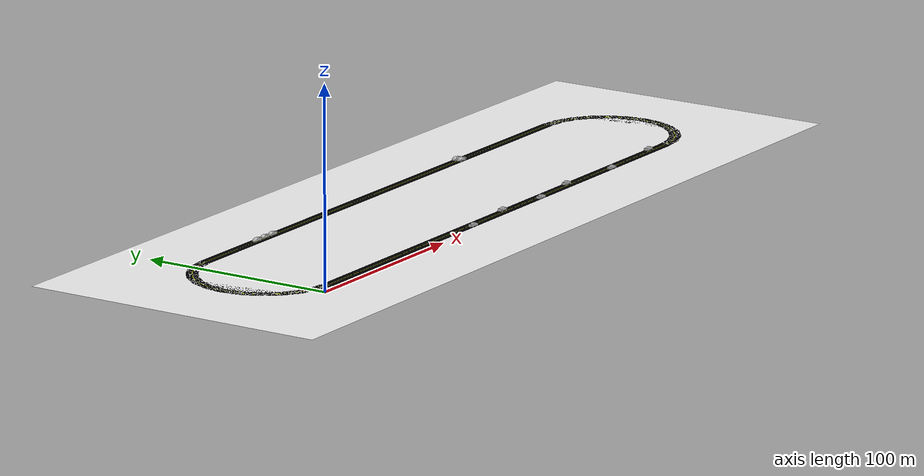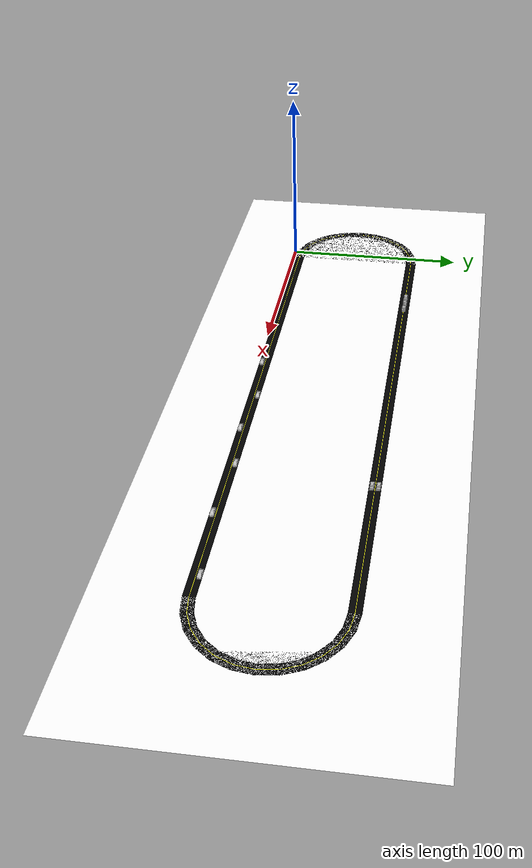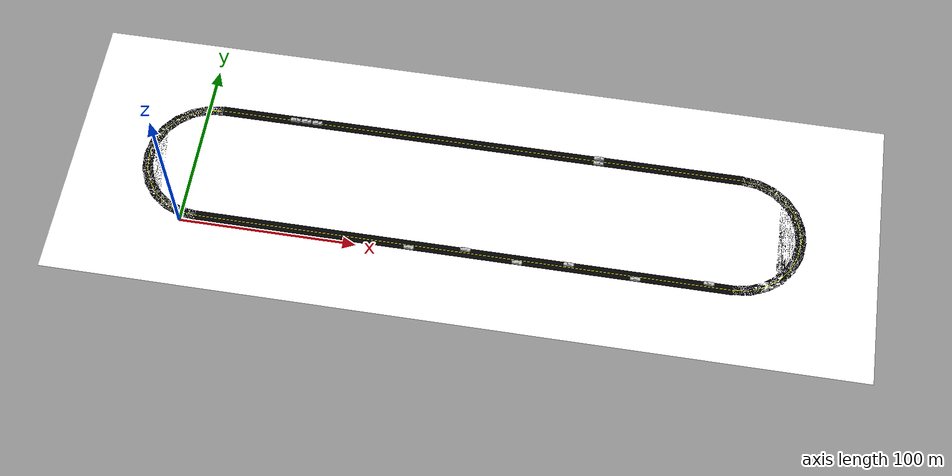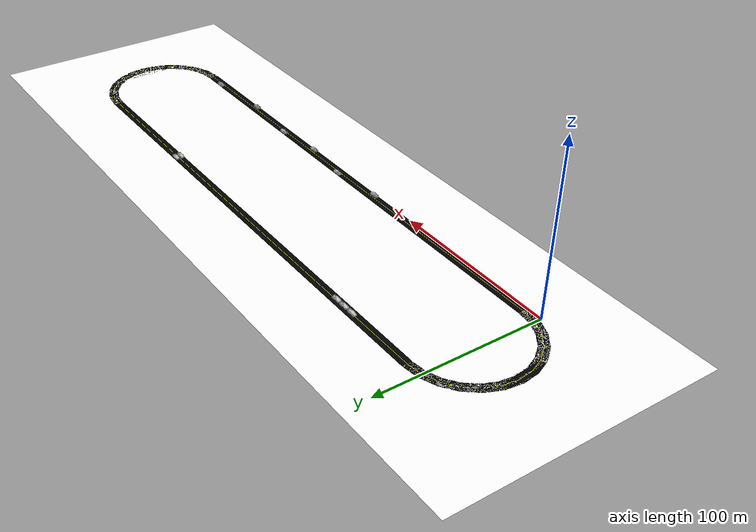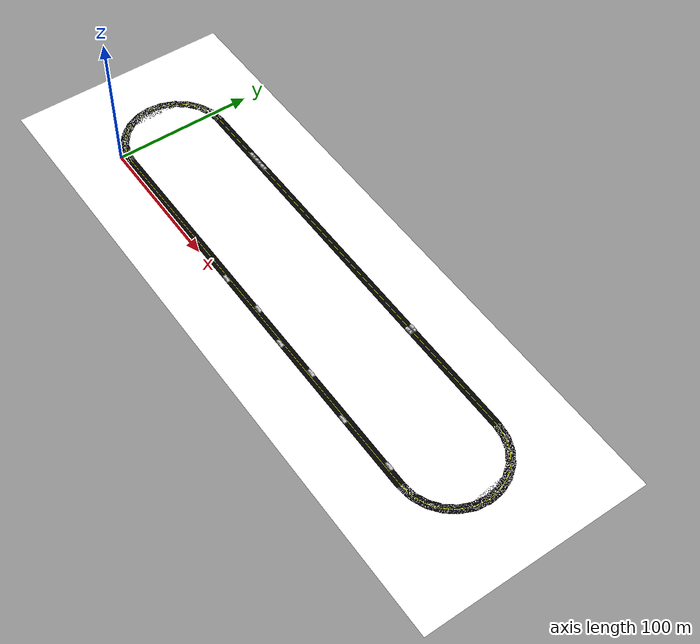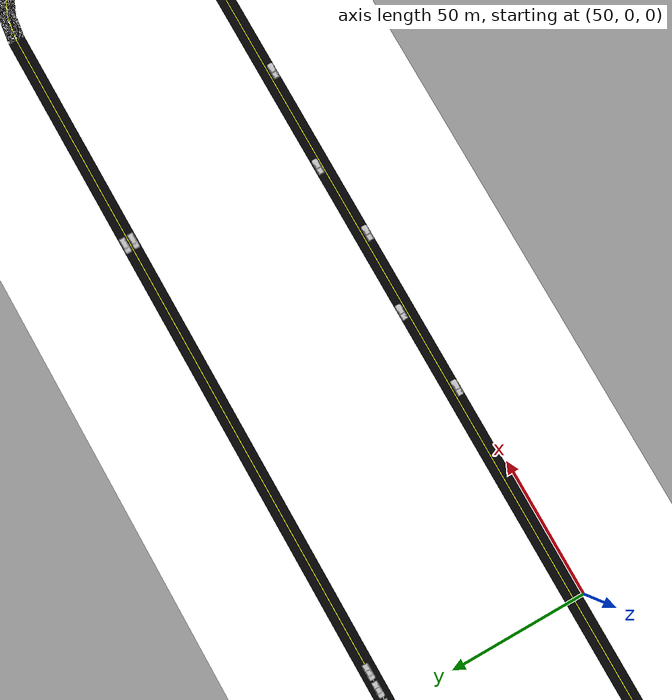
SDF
<sdf version="1.6">
 <world name="default">
  <light name="sun" type="directional">
   <pose>0 0 10 0 -0 0</pose>
   <diffuse>0.8 0.8 0.8 1</diffuse>
   <specular>0.2 0.2 0.2 1</specular>
   <attenuation>
    <range>1000</range>
    <constant>0.9</constant>
    <linear>0.01</linear>
    <quadratic>0.001</quadratic>
   </attenuation>
   <direction>-0.5 0.1 -0.9</direction>
  </light>
  <model name="LineTrack">
   <pose>0 0 1 0 -0 0</pose>
   <static>1</static>
   <link name="link">
    <inertial><mass>1000</mass></inertial>
    <collision name="collision">
     <geometry><mesh><uri>model://LineTrack/OvalTrack.dae</uri></mesh></geometry>
    </collision>
    <visual name="visual"><geometry><mesh><uri>model://LineTrack/OvalTrack.dae</uri></mesh></geometry></visual>
   </link>
  </model>
  <gravity>0 0 -9.8</gravity>
  <magnetic_field>6e-06 2.3e-05 -4.2e-05</magnetic_field>
  <atmosphere type="adiabatic"/>
  <physics name="default_physics" default="0" type="ode">
   <max_step_size>0.001</max_step_size>
   <real_time_factor>1</real_time_factor>
   <real_time_update_rate>400</real_time_update_rate>
  </physics>
  <scene><ambient>0.4 0.4 0.4 1</ambient><background>0.7 0.7 0.7 1</background><shadows>1</shadows></scene>
  <spherical_coordinates>
   <surface_model>EARTH_WGS84</surface_model>
   <latitude_deg>0</latitude_deg>
   <longitude_deg>0</longitude_deg>
   <elevation>0</elevation>
   <heading_deg>0</heading_deg>
  </spherical_coordinates>
  <model name="pickup">
   <static>1</static>
   <link name="link">
    <collision name="collision">
     <pose>0 0 0 0 0 -1.5708</pose>
     <geometry><mesh><uri>model://pickup/meshes/pickup.dae</uri></mesh></geometry>
    </collision>
    <visual name="visual">
     <pose>0 0 0 0 0 -1.5708</pose>
     <geometry><mesh><uri>model://pickup/meshes/pickup.dae</uri></mesh></geometry>
    </visual>
   </link>
   <pose>218.138 5.43507 1.00463 0 -0 0</pose>
  </model>
  <model name="pickup_0">
   <static>1</static>
   <link name="link">
    <collision name="collision">
     <pose>0 0 0 0 0 -1.5708</pose>
     <geometry><mesh><uri>model://pickup/meshes/pickup.dae</uri></mesh></geometry>
    </collision>
    <visual name="visual">
     <pose>0 0 0 0 0 -1.5708</pose>
     <geometry><mesh><uri>model://pickup/meshes/pickup.dae</uri></mesh></geometry>
    </visual>
   </link>
   <pose>295.135 5.65617 1.03055 0 -0 0</pose>
  </model>
  <model name="pickup_1">
   <static>1</static>
   <link name="link">
    <collision name="collision">
     <pose>0 0 0 0 0 -1.5708</pose>
     <geometry><mesh><uri>model://pickup/meshes/pickup.dae</uri></mesh></geometry>
    </collision>
    <visual name="visual">
     <pose>0 0 0 0 0 -1.5708</pose>
     <geometry><mesh><uri>model://pickup/meshes/pickup.dae</uri></mesh></geometry>
    </visual>
   </link>
   <pose>226.247 72.2388 1.15656 0 -0 3.13771</pose>
  </model>
  <model name="pickup_2">
   <static>1</static>
   <link name="link">
    <collision name="collision">
     <pose>0 0 0 0 0 -1.5708</pose>
     <geometry><mesh><uri>model://pickup/meshes/pickup.dae</uri></mesh></geometry>
    </collision>
    <visual name="visual">
     <pose>0 0 0 0 0 -1.5708</pose>
     <geometry><mesh><uri>model://pickup/meshes/pickup.dae</uri></mesh></geometry>
    </visual>
   </link>
   <pose>226.197 75.3885 1.13071 0 -0 3.12979</pose>
  </model>
  <model name="pickup_4">
   <static>1</static>
   <link name="link">
    <collision name="collision">
     <pose>0 0 0 0 0 -1.5708</pose>
     <geometry><mesh><uri>model://pickup/meshes/pickup.dae</uri></mesh></geometry>
    </collision>
    <visual name="visual">
     <pose>0 0 0 0 0 -1.5708</pose>
     <geometry><mesh><uri>model://pickup/meshes/pickup.dae</uri></mesh></geometry>
    </visual>
   </link>
   <pose>50.5499 73.9025 1.16641 0 0 -3.13999</pose>
  </model>
  <model name="pickup_5">
   <static>1</static>
   <link name="link">
    <collision name="collision">
     <pose>0 0 0 0 0 -1.5708</pose>
     <geometry><mesh><uri>model://pickup/meshes/pickup.dae</uri></mesh></geometry>
    </collision>
    <visual name="visual">
     <pose>0 0 0 0 0 -1.5708</pose>
     <geometry><mesh><uri>model://pickup/meshes/pickup.dae</uri></mesh></geometry>
    </visual>
   </link>
   <pose>56.9663 73.9053 1.18755 0 0 -3.13677</pose>
  </model>
  <model name="pickup_6">
   <static>1</static>
   <link name="link">
    <collision name="collision">
     <pose>0 0 0 0 0 -1.5708</pose>
     <geometry><mesh><uri>model://pickup/meshes/pickup.dae</uri></mesh></geometry>
    </collision>
    <visual name="visual">
     <pose>0 0 0 0 0 -1.5708</pose>
     <geometry><mesh><uri>model://pickup/meshes/pickup.dae</uri></mesh></geometry>
    </visual>
   </link>
   <pose>63.3023 73.8108 1.15065 0 0 -3.1398</pose>
  </model>
  <model name="pickup_3">
   <static>1</static>
   <link name="link">
    <collision name="collision">
     <pose>0 0 0 0 0 -1.5708</pose>
     <geometry><mesh><uri>model://pickup/meshes/pickup.dae</uri></mesh></geometry>
    </collision>
    <visual name="visual">
     <pose>0 0 0 0 0 -1.5708</pose>
     <geometry><mesh><uri>model://pickup/meshes/pickup.dae</uri></mesh></geometry>
    </visual>
   </link>
   <pose>255.075 2.2164 1.0373 0 -0 0</pose>
  </model>
  <model name="pickup_7">
   <static>1</static>
   <link name="link">
    <collision name="collision">
     <pose>0 0 0 0 0 -1.5708</pose>
     <geometry><mesh><uri>model://pickup/meshes/pickup.dae</uri></mesh></geometry>
    </collision>
    <visual name="visual">
     <pose>0 0 0 0 0 -1.5708</pose>
     <geometry><mesh><uri>model://pickup/meshes/pickup.dae</uri></mesh></geometry>
    </visual>
   </link>
   <pose>129.581 2.24078 1.00756 0 -0 0</pose>
  </model>
  <model name="pickup_8">
   <static>1</static>
   <link name="link">
    <collision name="collision">
     <pose>0 0 0 0 0 -1.5708</pose>
     <geometry><mesh><uri>model://pickup/meshes/pickup.dae</uri></mesh></geometry>
    </collision>
    <visual name="visual">
     <pose>0 0 0 0 0 -1.5708</pose>
     <geometry><mesh><uri>model://pickup/meshes/pickup.dae</uri></mesh></geometry>
    </visual>
   </link>
   <pose>189.906 2.19054 1.03415 0 -0 0</pose>
  </model>
  <model name="pickup_9">
   <static>1</static>
   <link name="link">
    <collision name="collision">
     <pose>0 0 0 0 0 -1.5708</pose>
     <geometry><mesh><uri>model://pickup/meshes/pickup.dae</uri></mesh></geometry>
    </collision>
    <visual name="visual">
     <pose>0 0 0 0 0 -1.5708</pose>
     <geometry><mesh><uri>model://pickup/meshes/pickup.dae</uri></mesh></geometry>
    </visual>
   </link>
   <pose>160.738 5.70315 1.00627 0 -0 0</pose>
  </model>
 </world>
</sdf>
